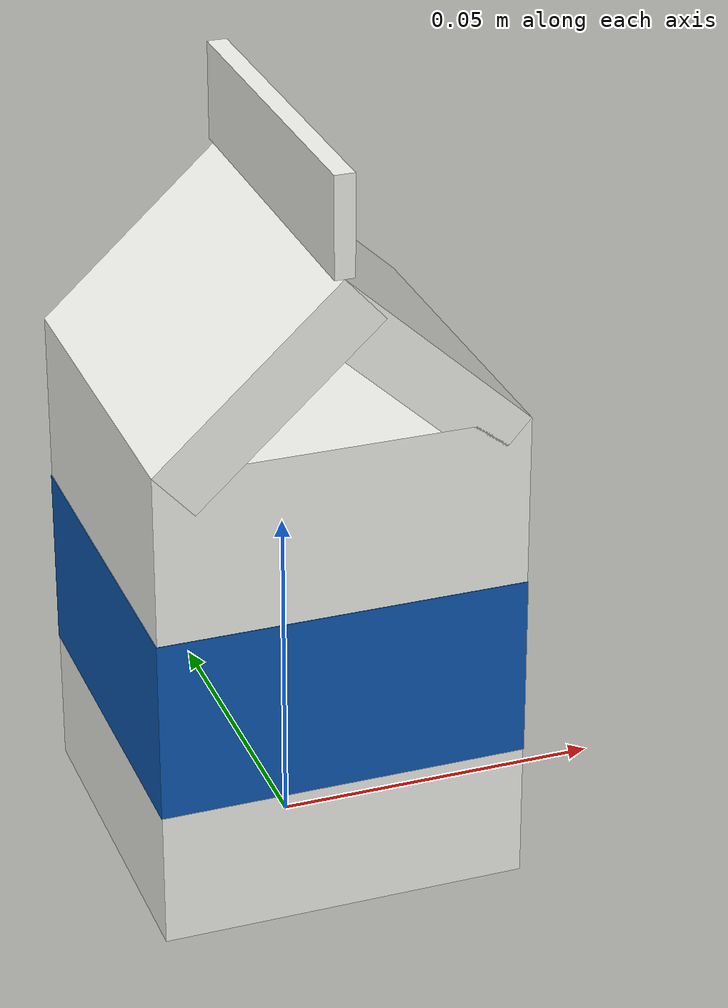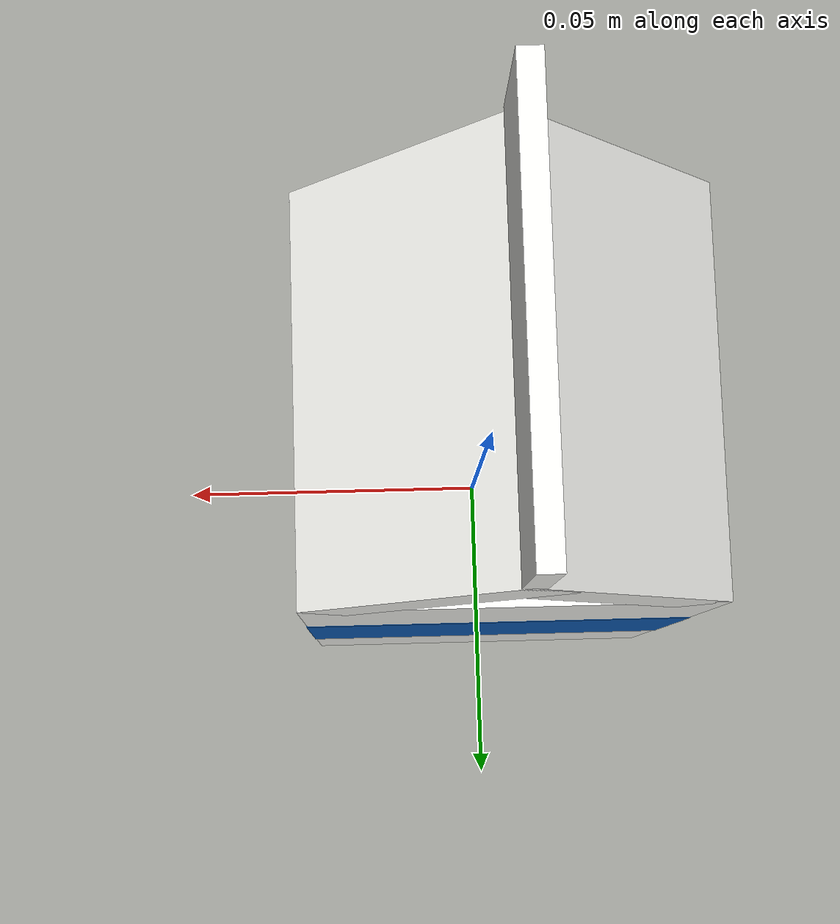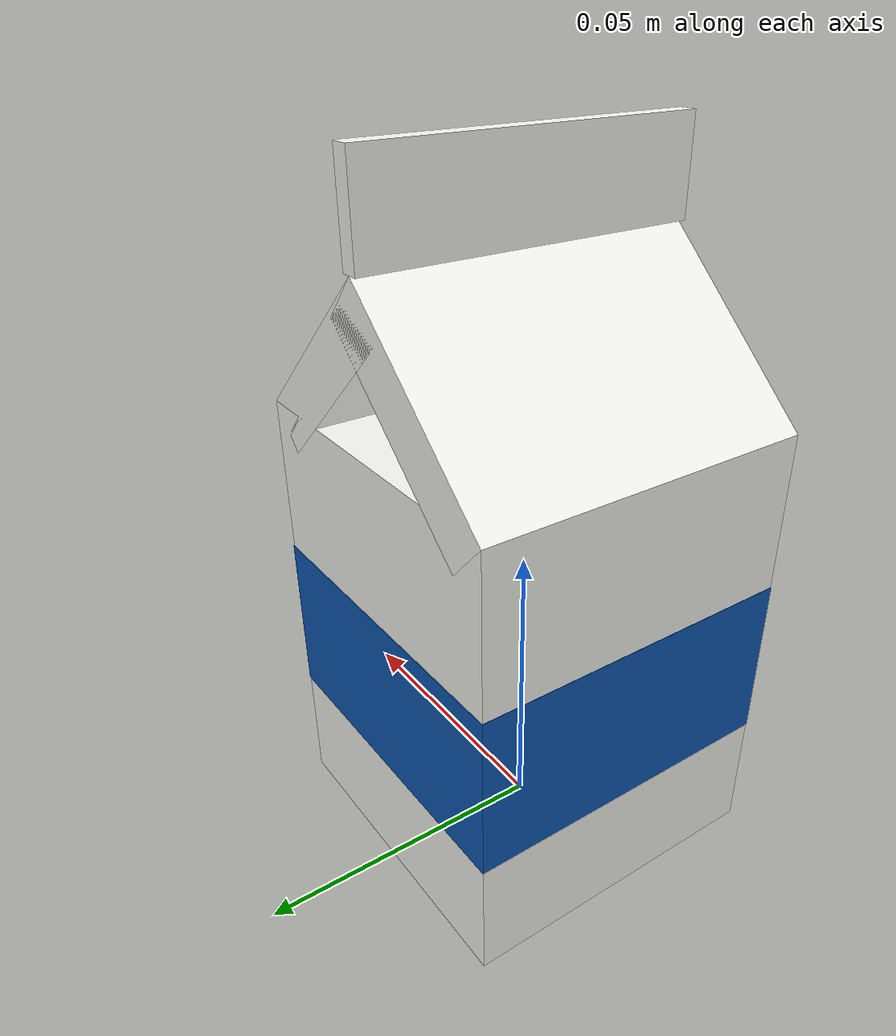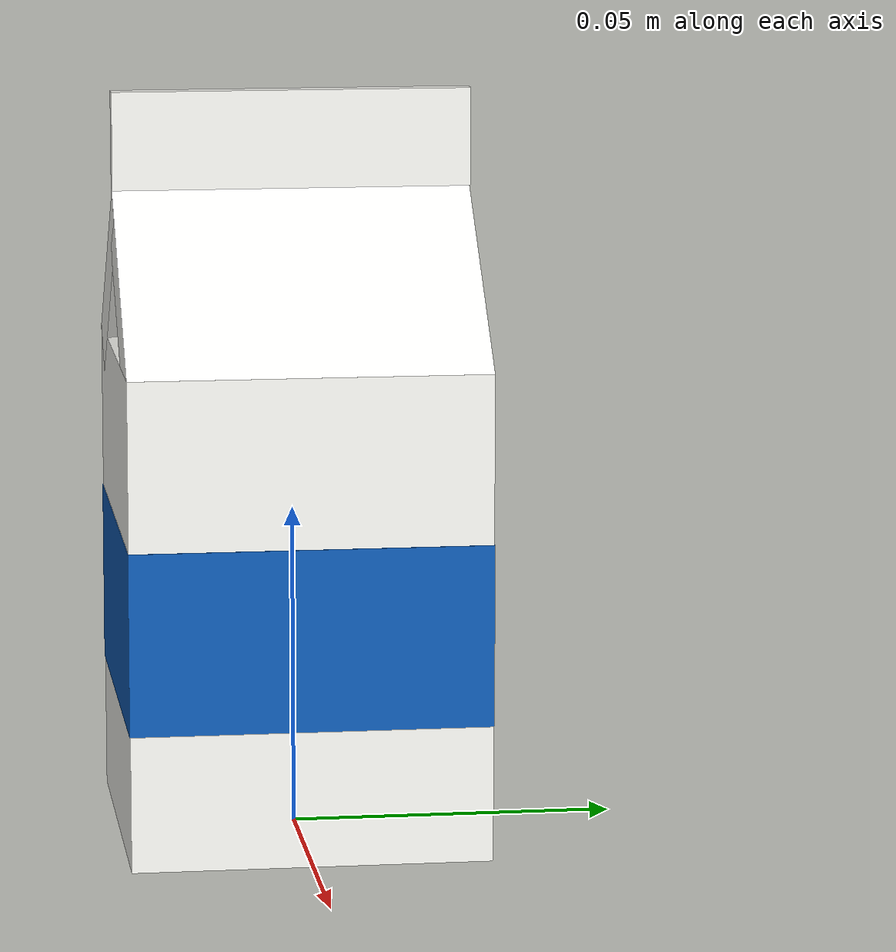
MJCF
<mujoco model="milk_carton">

  <default>
    <default class="milk">
      <geom condim="4" friction="1.2 0.05 0.001" solref="0.01 1" rgba="0.96 0.96 0.94 1"/>
    </default>
    <default class="milk_print">
      <geom contype="0" conaffinity="0" group="1" mass="0"/>
    </default>
  </default>

  <worldbody>
    <body name="root">
      <freejoint name="free"/>
      <geom name="body" class="milk" type="box"
            pos="+0.00000 +0.00000 +0.03750"
            size="+0.02750 +0.02750 +0.03750" mass="0.270"/>

      <!-- Gable roof + sealed top fin. -->
      <geom class="milk" type="box" pos="+0.01072 +0.00000 +0.08417" quat="+0.932722 +0.000000 +0.360597 +0.000000" size="+0.01858 +0.02750 +0.00450" mass="0.005"/>
      <geom class="milk" type="box" pos="-0.01072 +0.00000 +0.08417" quat="+0.932722 +0.000000 -0.360597 +0.000000" size="+0.01858 +0.02750 +0.00450" mass="0.005"/>
      <geom name="fin" class="milk" type="box"
            pos="+0.00000 +0.00000 +0.10750"
            size="+0.00150 +0.02750 +0.00750" mass="0.002"/>

      <!-- Blue label band (visual only, 0.1 mm proud of the body). -->
      <geom class="milk_print" type="box"
            pos="+0.00000 +0.00000 +0.03500" size="+0.02760 +0.02760 +0.01400"
            rgba="0.05 0.35 0.70 1"/>
    </body>
  </worldbody>
</mujoco>
